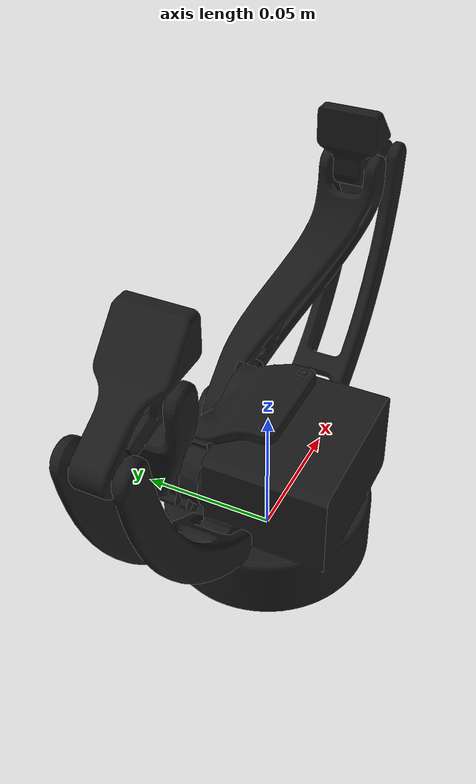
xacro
<?xml version="1.0"?>
<robot xmlns:xacro="http://wiki.ros.org/xacro" name="e2f">
  <!-- Parameters -->
  <xacro:arg name="tf_prefix" default="e2f_" />
  <xacro:arg name="use_fake_hardware" default="true" />
  <xacro:arg name="device_name" default="/dev/ttyUSB0" />
  <xacro:arg name="baud_rate" default="57600" />
  <xacro:arg name="dynamixel_id" default="1" />

  <xacro:include filename="$(find e2f_description)/urdf/e2f_macro.xacro" />
  <xacro:e2f
    name="e2f"
    tf_prefix="$(arg tf_prefix)"
    use_fake_hardware="$(arg use_fake_hardware)"
    device_name="$(arg device_name)"
    baud_rate="$(arg baud_rate)"
    dynamixel_id="$(arg dynamixel_id)"
  />

  <link name="world" />

  <joint name="$(arg tf_prefix)base_joint" type="fixed">
    <parent link="world" />
    <child link="$(arg tf_prefix)base_link" />
    <origin xyz="0 0 0" rpy="0 0 0" />
  </joint>
</robot>

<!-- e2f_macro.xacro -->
<robot xmlns:xacro="http://wiki.ros.org/xacro" name="e2f">
  <xacro:macro name="e2f"
    params="
      name
      tf_prefix
      use_fake_hardware:=false
      device_name:=/dev/ttyUSB0
      baud_rate:=57600
      dynamixel_id:=1
      spring_constant:=12.0
      active_joint_offset:=0.03
      filter_coefficient:=0.2"
  >
    <!-- ros2_control -->
    <xacro:include filename="$(find e2f_description)/urdf/e2f.ros2_control.xacro" />
    <xacro:e2f_ros2_control
      name="${name}"
      tf_prefix="${tf_prefix}"
      use_fake_hardaware="${use_fake_hardware}"
      device_name="${device_name}"
      baud_rate="${baud_rate}"
      dynamixel_id="${dynamixel_id}"
      spring_constant="${spring_constant}"
      active_joint_offset="${active_joint_offset}"
      filter_coefficient="${filter_coefficient}"
    />

    <xacro:property name="description_package" value="$(find e2f_description)" />

    <link name="${tf_prefix}base_link">
      <visual>
        <geometry>
          <mesh filename="file://${description_package}/meshes/visual/base_link.dae" />
        </geometry>
      </visual>
      <collision>
        <geometry>
          <mesh filename="file://${description_package}/meshes/collision/base_link.stl" />
        </geometry>
      </collision>
    </link>

    <link name="${tf_prefix}gear_l">
      <visual>
        <geometry>
          <mesh filename="file://${description_package}/meshes/visual/gear_l.dae" />
        </geometry>
      </visual>
    </link>

    <link name="${tf_prefix}gear_r">
      <visual>
        <geometry>
          <mesh filename="file://${description_package}/meshes/visual/gear_r.dae" />
        </geometry>
      </visual>
    </link>

    <link name="${tf_prefix}link1_l">
      <visual>
        <geometry>
          <mesh filename="file://${description_package}/meshes/visual/link1_l.dae" />
        </geometry>
      </visual>
      <collision>
        <geometry>
          <mesh filename="file://${description_package}/meshes/collision/link1_l.stl" />
        </geometry>
      </collision>
    </link>

    <link name="${tf_prefix}link1_r">
      <visual>
        <geometry>
          <mesh filename="file://${description_package}/meshes/visual/link1_r.dae" />
        </geometry>
      </visual>
      <collision>
        <geometry>
          <mesh filename="file://${description_package}/meshes/collision/link1_r.stl" />
        </geometry>
      </collision>
    </link>

    <link name="${tf_prefix}link2_l">
      <visual>
        <geometry>
          <mesh filename="file://${description_package}/meshes/visual/link2_l.dae" />
        </geometry>
      </visual>
      <collision>
        <geometry>
          <mesh filename="file://${description_package}/meshes/collision/link2_l.stl" />
        </geometry>
      </collision>
    </link>

    <link name="${tf_prefix}link2_r">
      <visual>
        <geometry>
          <mesh filename="file://${description_package}/meshes/visual/link2_r.dae" />
        </geometry>
      </visual>
      <collision>
        <geometry>
          <mesh filename="file://${description_package}/meshes/collision/link2_r.stl" />
        </geometry>
      </collision>
    </link>

    <link name="${tf_prefix}link3_l">
      <visual>
        <origin xyz="0 0 0" rpy="0 0 ${pi}" />
        <geometry>
          <mesh filename="file://${description_package}/meshes/visual/link3.dae" />
        </geometry>
      </visual>
      <collision>
        <origin xyz="0 0 0" rpy="0 0 ${pi}" />
        <geometry>
          <mesh filename="file://${description_package}/meshes/collision/link3.stl" />
        </geometry>
      </collision>
    </link>

    <link name="${tf_prefix}link3_r">
      <visual>
        <geometry>
          <mesh filename="file://${description_package}/meshes/visual/link3.dae" />
        </geometry>
      </visual>
      <collision>
        <geometry>
          <mesh filename="file://${description_package}/meshes/collision/link3.stl" />
        </geometry>
      </collision>
    </link>

    <joint name="${tf_prefix}active_joint" type="continuous">
      <parent link="${tf_prefix}base_link" />
      <child link="${tf_prefix}gear_r" />
      <origin xyz="-0.016 0.0125 0.035" rpy="0 0 0" />
      <axis xyz="0 1 0" />
    </joint>

    <joint name="${tf_prefix}passive_l_joint" type="continuous">
      <parent link="${tf_prefix}base_link" />
      <child link="${tf_prefix}link2_l" />
      <origin xyz="0.040 0 0.030" rpy="0 0 0" />
      <axis xyz="0 -1 0" />
    </joint>

    <joint name="${tf_prefix}passive_r_joint" type="continuous">
      <parent link="${tf_prefix}base_link" />
      <child link="${tf_prefix}link2_r" />
      <origin xyz="-0.040 0 0.030" rpy="0 0 0" />
      <axis xyz="0 1 0" />
    </joint>

    <joint name="${tf_prefix}base_gear_l_joint" type="continuous">
      <parent link="${tf_prefix}base_link" />
      <child link="${tf_prefix}gear_l" />
      <origin xyz="0.016 0.0125 0.035" rpy="0 0 0" />
      <axis xyz="0 -1 0" />
      <mimic joint="${tf_prefix}active_joint" />
    </joint>

    <joint name="${tf_prefix}base_link1_l_joint" type="continuous">
      <parent link="${tf_prefix}base_link" />
      <child link="${tf_prefix}link1_l" />
      <origin xyz="0.016 0 0.035" rpy="0 0 0" />
      <axis xyz="0 -1 0" />
      <mimic joint="${tf_prefix}passive_l_joint" />
    </joint>

    <joint name="${tf_prefix}base_link1_r_joint" type="continuous">
      <parent link="${tf_prefix}base_link" />
      <child link="${tf_prefix}link1_r" />
      <origin xyz="-0.016 0 0.035" rpy="0 0 0" />
      <axis xyz="0 1 0" />
      <mimic joint="${tf_prefix}passive_r_joint" />
    </joint>

    <joint name="${tf_prefix}link1_link3_l_joint" type="continuous">
      <parent link="${tf_prefix}link1_l" />
      <child link="${tf_prefix}link3_l" />
      <origin xyz="0.054 0 0.07816" rpy="0 0 0" />
      <axis xyz="0 -1 0" />
      <mimic joint="${tf_prefix}passive_l_joint" multiplier="-1" />
    </joint>

    <joint name="${tf_prefix}link1_link3_r_joint" type="continuous">
      <parent link="${tf_prefix}link1_r" />
      <child link="${tf_prefix}link3_r" />
      <origin xyz="-0.054 0 0.07816" rpy="0 0 0" />
      <axis xyz="0 1 0" />
      <mimic joint="${tf_prefix}passive_r_joint" multiplier="-1" />
    </joint>

    <!-- Fingertip links -->
    <link name="${tf_prefix}fingertip_l" />
    <joint name="${tf_prefix}fingertip_l_joint" type="fixed">
      <parent link="${tf_prefix}link3_l" />
      <child link="${tf_prefix}fingertip_l" />
      <origin xyz="-8e-3 0 17e-3" rpy="0 0 ${pi}" />
    </joint>
    <link name="${tf_prefix}fingertip_r" />
    <joint name="${tf_prefix}fingertip_r_joint" type="fixed">
      <parent link="${tf_prefix}link3_r" />
      <child link="${tf_prefix}fingertip_r" />
      <origin xyz="8e-3 0 17e-3" rpy="0 0 0" />
    </joint>

  </xacro:macro>
</robot>
